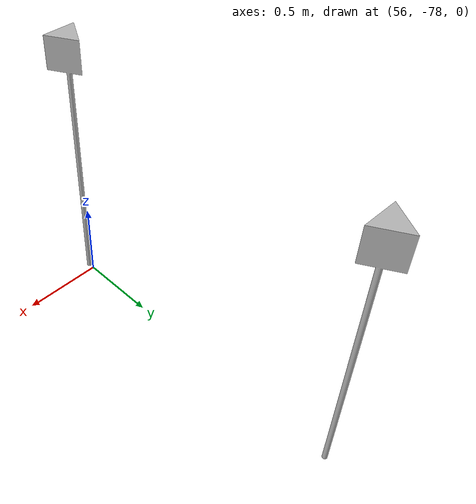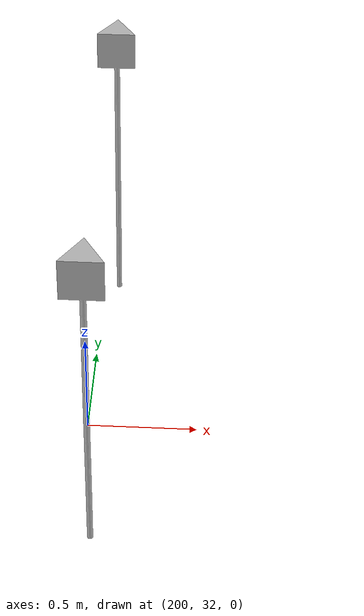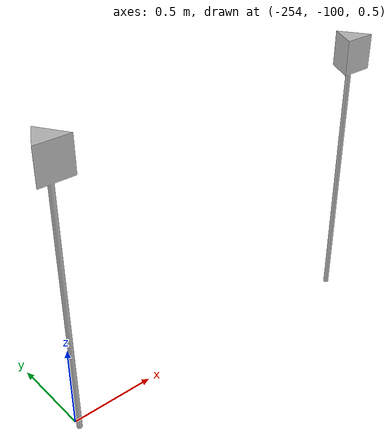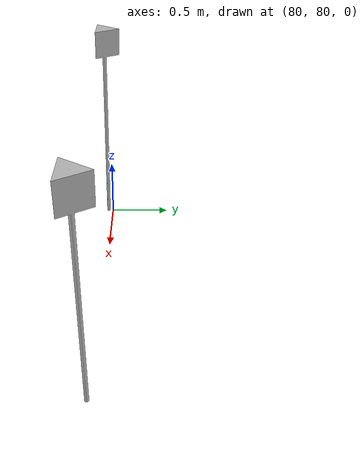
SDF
<sdf version="1.6">
 <world name="default">
  <physics type="ode">
   <ode>
    <solver><type>quick</type><iters>150</iters><friction_model>cone_model</friction_model></solver>
    <constraints><contact_surface_layer>0.01</contact_surface_layer></constraints>
   </ode>
  </physics>
  <scene><sky><clouds><speed>6</speed></clouds></sky></scene>
  <include><uri>model://sun</uri></include>
  <include><uri>model://ar_post</uri><pose>10 0 -0.7 0 0 0</pose></include>
  <model name="AR Post Leg 2">
   <pose>80 -70 0 0 0 0</pose>
   <static>true</static>
   <link name="link">
    <collision name="collision">
     <geometry><mesh><uri>model://ar_post/meshes/ar_post.dae</uri></mesh></geometry>
    </collision>
    <visual name="visual">
     <geometry><mesh><uri>model://ar_post/meshes/ar_post.dae</uri></mesh></geometry>
     <material>
      <script>
       <uri>model://ar_post/materials/scripts</uri>
       <uri>model://ar_post/materials/textures</uri>
       <name>ARLeg2</name>
      </script>
     </material>
    </visual>
   </link>
  </model>
  <model name="AR Post Leg 3">
   <pose>150.0 0 0 0 0 0</pose>
   <static>true</static>
   <link name="link">
    <collision name="collision">
     <geometry><mesh><uri>model://ar_post/meshes/ar_post.dae</uri></mesh></geometry>
    </collision>
    <visual name="visual">
     <geometry><mesh><uri>model://ar_post/meshes/ar_post.dae</uri></mesh></geometry>
     <material>
      <script>
       <uri>model://ar_post/materials/scripts</uri>
       <uri>model://ar_post/materials/textures</uri>
       <name>ARLeg3</name>
      </script>
     </material>
    </visual>
   </link>
  </model>
  <model name="AR Post Leg 4 Left">
   <pose>200 32 -0.7 0 0 0</pose>
   <static>true</static>
   <link name="link">
    <collision name="collision">
     <geometry><mesh><uri>model://ar_post/meshes/ar_post.dae</uri></mesh></geometry>
    </collision>
    <visual name="visual">
     <geometry><mesh><uri>model://ar_post/meshes/ar_post.dae</uri></mesh></geometry>
     <material>
      <script>
       <uri>model://ar_post/materials/scripts</uri>
       <uri>model://ar_post/materials/textures</uri>
       <name>ARLeg4L</name>
      </script>
     </material>
    </visual>
   </link>
  </model>
  <model name="AR Post Leg 4 Right">
   <pose>200 34 -0.7 0 0 0</pose>
   <static>true</static>
   <link name="link">
    <collision name="collision">
     <geometry><mesh><uri>model://ar_post/meshes/ar_post.dae</uri></mesh></geometry>
    </collision>
    <visual name="visual">
     <geometry><mesh><uri>model://ar_post/meshes/ar_post.dae</uri></mesh></geometry>
     <material>
      <script>
       <uri>model://ar_post/materials/scripts</uri>
       <uri>model://ar_post/materials/textures</uri>
       <name>ARLeg4R</name>
      </script>
     </material>
    </visual>
   </link>
  </model>
  <model name="AR Post Leg 5 Left">
   <pose>82 80 0 0 0 0</pose>
   <static>true</static>
   <link name="link">
    <collision name="collision">
     <geometry><mesh><uri>model://ar_post/meshes/ar_post.dae</uri></mesh></geometry>
    </collision>
    <visual name="visual">
     <geometry><mesh><uri>model://ar_post/meshes/ar_post.dae</uri></mesh></geometry>
     <material>
      <script>
       <uri>model://ar_post/materials/scripts</uri>
       <uri>model://ar_post/materials/textures</uri>
       <name>ARLeg5L</name>
      </script>
     </material>
    </visual>
   </link>
  </model>
  <model name="AR Post Leg 5 Right">
   <pose>80 80 0 0 0 0</pose>
   <static>true</static>
   <link name="link">
    <collision name="collision">
     <geometry><mesh><uri>model://ar_post/meshes/ar_post.dae</uri></mesh></geometry>
    </collision>
    <visual name="visual">
     <geometry><mesh><uri>model://ar_post/meshes/ar_post.dae</uri></mesh></geometry>
     <material>
      <script>
       <uri>model://ar_post/materials/scripts</uri>
       <uri>model://ar_post/materials/textures</uri>
       <name>ARLeg5R</name>
      </script>
     </material>
    </visual>
   </link>
  </model>
  <model name="AR Post Leg 6 Left">
   <pose>-254 -100 0.5 0 0 0</pose>
   <static>true</static>
   <link name="link">
    <collision name="collision">
     <geometry><mesh><uri>model://ar_post/meshes/ar_post.dae</uri></mesh></geometry>
    </collision>
    <visual name="visual">
     <geometry><mesh><uri>model://ar_post/meshes/ar_post.dae</uri></mesh></geometry>
     <material>
      <script>
       <uri>model://ar_post/materials/scripts</uri>
       <uri>model://ar_post/materials/textures</uri>
       <name>ARLeg6L</name>
      </script>
     </material>
    </visual>
   </link>
  </model>
  <model name="AR Post Leg 6 Right">
   <pose>-252 -100 0.5 0 0 0</pose>
   <static>true</static>
   <link name="link">
    <collision name="collision">
     <geometry><mesh><uri>model://ar_post/meshes/ar_post.dae</uri></mesh></geometry>
    </collision>
    <visual name="visual">
     <geometry><mesh><uri>model://ar_post/meshes/ar_post.dae</uri></mesh></geometry>
     <material>
      <script>
       <uri>model://ar_post/materials/scripts</uri>
       <uri>model://ar_post/materials/textures</uri>
       <name>ARLeg6R</name>
      </script>
     </material>
    </visual>
   </link>
  </model>
  <model name="AR Post Leg 7 Left">
   <pose>56 -78 0 0 0 0</pose>
   <static>true</static>
   <link name="link">
    <collision name="collision">
     <geometry><mesh><uri>model://ar_post/meshes/ar_post.dae</uri></mesh></geometry>
    </collision>
    <visual name="visual">
     <geometry><mesh><uri>model://ar_post/meshes/ar_post.dae</uri></mesh></geometry>
     <material>
      <script>
       <uri>model://ar_post/materials/scripts</uri>
       <uri>model://ar_post/materials/textures</uri>
       <name>ARLeg7L</name>
      </script>
     </material>
    </visual>
   </link>
  </model>
  <model name="AR Post Leg 7 Right">
   <pose>56 -76 0 0 0 0</pose>
   <static>true</static>
   <link name="link">
    <collision name="collision">
     <geometry><mesh><uri>model://ar_post/meshes/ar_post.dae</uri></mesh></geometry>
    </collision>
    <visual name="visual">
     <geometry><mesh><uri>model://ar_post/meshes/ar_post.dae</uri></mesh></geometry>
     <material>
      <script>
       <uri>model://ar_post/materials/scripts</uri>
       <uri>model://ar_post/materials/textures</uri>
       <name>ARLeg7R</name>
      </script>
     </material>
    </visual>
   </link>
  </model>
 </world>
</sdf>

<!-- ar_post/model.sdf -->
<sdf version="1.6">
  <model name="AR Post Leg 1">
    <static>true</static>
    <link name="link">
      <collision name="collision">
        <geometry>
          <mesh>
            <uri>model://ar_post/meshes/ar_post.dae</uri>
          </mesh>
        </geometry>
      </collision>
      <visual name="visual">
        <geometry>
          <mesh>
            <uri>model://ar_post/meshes/ar_post.dae</uri>
          </mesh>
        </geometry>
        <material>
          <script>
            <uri>model://ar_post/materials/scripts</uri>
            <uri>model://ar_post/materials/textures</uri>
            <name>ARLeg1</name>
          </script>
        </material>
      </visual>
    </link>
  </model>
</sdf>
